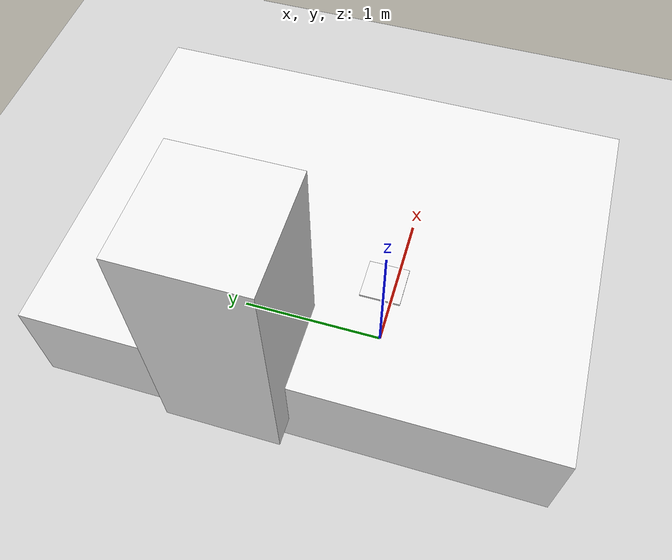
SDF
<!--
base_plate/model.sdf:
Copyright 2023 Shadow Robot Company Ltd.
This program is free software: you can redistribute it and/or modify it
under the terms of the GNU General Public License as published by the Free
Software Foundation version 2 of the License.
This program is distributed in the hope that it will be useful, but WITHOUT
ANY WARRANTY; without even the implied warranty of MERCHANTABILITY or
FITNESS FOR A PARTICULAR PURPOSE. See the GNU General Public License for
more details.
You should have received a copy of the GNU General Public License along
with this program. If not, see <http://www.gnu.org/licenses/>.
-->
<sdf version="1.4">
 <world name="default">
  <include><uri>model://ground</uri><pose>-0.20 0.60 0.0 0 0 0</pose></include>
  <include><uri>model://ground</uri><pose>-0.20 0.60 2.0 0 0 0</pose></include>
  <light type="directional" name="lab_light">
   <pose>0.86 1.96 2.5 -1.55 0 0</pose>
   <diffuse>.8 .8 .8 1</diffuse>
   <specular>.2 .2 .2 1</specular>
   <attenuation>
    <range>20</range>
    <constant>0.9</constant>
    <linear>0.01</linear>
    <quadratic>0.001</quadratic>
   </attenuation>
   <direction>0 0 -1</direction>
  </light>
  <include>
   <uri>model://base_plate</uri>
   <static>true</static>
   <name>base_plate</name>
   <pose>0.0 0.0 0.7411 0.0 0.0 1.57079632679</pose>
  </include>
  <include>
   <uri>model://base_plate</uri>
   <static>true</static>
   <name>base_plate_1</name>
   <pose>0.0 1.5 0.7411 0.0 0.0 1.57079632679</pose>
  </include>
  <include>
   <uri>model://human</uri>
   <static>true</static>
   <name>human</name>
   <pose>-0.65 0.75 1.15 3.145 1.57079632679 3.1451</pose>
  </include>
  <include>
   <uri>model://big_table</uri>
   <static>true</static>
   <name>big_table</name>
   <pose>0.4 0.4 0.369 0.0 0.0 1.57079632679</pose>
  </include>
  <physics type="ode">
   <gravity>0.000000 0.000000 -9.810000</gravity>
   <ode>
    <solver><type>quick</type><iters>100</iters><precon_iters>0</precon_iters><sor>1.000000</sor></solver>
    <constraints>
     <cfm>0.000000</cfm>
     <erp>0.500000</erp>
     <contact_max_correcting_vel>1000.000000</contact_max_correcting_vel>
     <contact_surface_layer>0.00000</contact_surface_layer>
    </constraints>
   </ode>
   <real_time_update_rate>0.000000</real_time_update_rate>
   <max_step_size>0.001000</max_step_size>
  </physics>
  <scene><ambient>0.4 0.4 0.4 1</ambient><background>0.7 0.7 1 1</background><shadows>1</shadows></scene>
 </world>
</sdf>

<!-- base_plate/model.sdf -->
<sdf version="1.4">
<model name="base_plate">
    <static>true</static>
    <link name="link">
      <collision name="collision_base_plate">
        <geometry>
          <box>
            <size>0.26 0.26 0.014</size>
          </box>
        </geometry>
      </collision>
      <visual name="visual_base_plate">
        <geometry>
          <box>
            <size>0.26 0.26 0.014</size>
          </box>
        </geometry>
        <material>
          <script>
            <uri>file://media/materials/scripts/gazebo.material</uri>
            <name>Gazebo/White</name>
          </script>
        </material>
      </visual>
    </link>
  </model>
</sdf>

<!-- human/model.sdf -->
<sdf version="1.4">
<model name="human">
    <static>true</static>
    <link name="link">
      <collision name="collision_human">
        <geometry>
          <box>
            <size>1.75 0.75 0.75</size>
          </box>
        </geometry>
      </collision>
      <visual name="visual_human">
        <geometry>
          <box>
            <size>1.75 0.75 0.75</size>
          </box>
        </geometry>
        <material>
          <script>
            <uri>file://media/materials/scripts/gazebo.material</uri>
            <name>Gazebo/White</name>
          </script>
        </material>
      </visual>
    </link>
  </model>
</sdf>

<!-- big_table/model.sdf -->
<sdf version="1.4">
<model name="big_table">
    <static>true</static>
    <link name="link">
      <collision name="collision_big_table">
        <geometry>
          <box>
            <size>3.4 2.5 0.713</size>
          </box>
        </geometry>
      </collision>
      <visual name="visual_big_table">
        <geometry>
          <box>
            <size>3.4 2.5 0.713</size>
          </box>
        </geometry>
        <material>
          <script>
            <uri>file://media/materials/scripts/gazebo.material</uri>
            <name>Gazebo/White</name>
          </script>
        </material>
      </visual>
    </link>
  </model>
</sdf>
